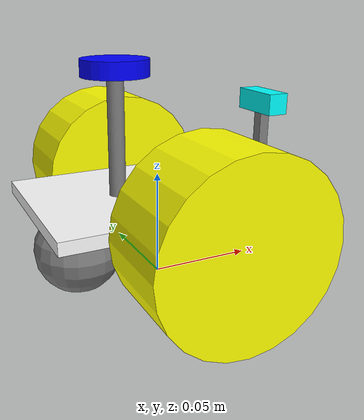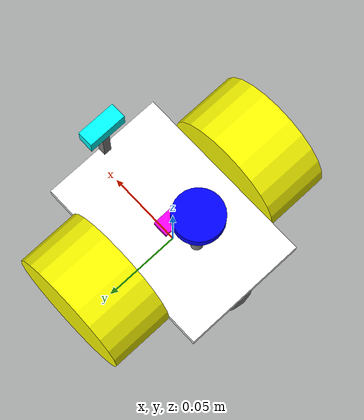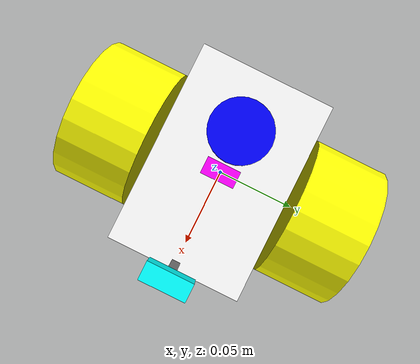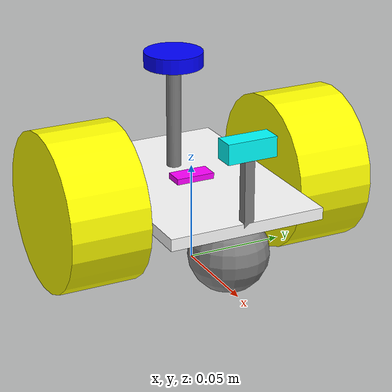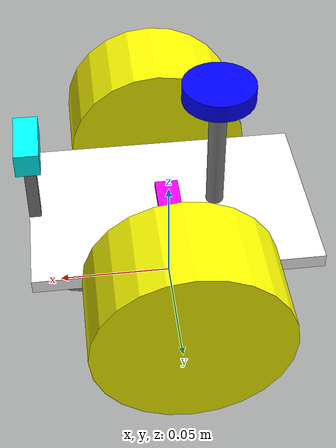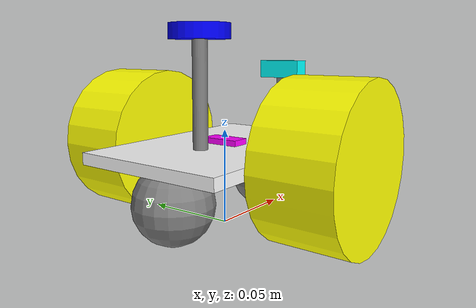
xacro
<?xml version="1.0"?>
<robot xmlns:xacro="http://ros.org/wiki/xacro" name="amr_sim">

    <xacro:property name="base_link" value="base_link" />
    <xacro:property name="lidar_link" value="lidar_link" />
    <xacro:property name="camera_link" value="camera_link" />
    <xacro:property name="imu_link" value="imu_link" />

    <xacro:property name="left_wheel" value="left_wheel" />
    <xacro:property name="right_wheel" value="right_wheel" />
    <xacro:property name="front_castor" value="front_castor" />
    <xacro:property name="back_castor" value="back_castor" />

    <xacro:include filename="$(find description)/urdf/base.xacro" />
    <xacro:include filename="$(find description)/urdf/wheel.xacro" />
    <xacro:include filename="$(find description)/urdf/castor.xacro" />
    <xacro:include filename="$(find description)/urdf/lidar.xacro" />
    <xacro:include filename="$(find description)/urdf/camera.xacro" />
    <xacro:include filename="$(find description)/urdf/imu.xacro" />

    <xacro:base name="${base_link}" joint_xyz="0 0 ${wheel_radius}" />
    <xacro:lidar name="${lidar_link}" joint_xyz="-${base_width/4} 0 ${lidar_height/2}" parent_name="${base_link}" />
    <xacro:camera name="${camera_link}" joint_xyz="${base_length/2-camera_support_width/2} 0 ${camera_support_height/2}" parent_name="${base_link}" />
    <xacro:imu name="${imu_link}" joint_xyz="0 0 ${imu_height/2+base_height/2}" parent_name="${base_link}" />

    <xacro:wheel name="${left_wheel}" joint_xyz="0 ${base_width/2+wheel_width/2} 0" fdir1_value="1 1 1" parent_name="${base_link}" />
    <xacro:wheel name="${right_wheel}" joint_xyz="0 -${base_width/2+wheel_width/2} 0" fdir1_value="1 1 1" parent_name="${base_link}" />
    <xacro:castor name="${front_castor}" joint_xyz="${base_length/2-castor_radius} 0 -${castor_radius}" parent_name="${base_link}" />
    <xacro:castor name="${back_castor}" joint_xyz="-${base_length/2-castor_radius} 0 -${castor_radius}" parent_name="${base_link}" />

    <xacro:include filename="$(find description)/urdf/gazebo_sensors_plugins.xacro" />
    <xacro:gazebo_sensors_plugins camera_link="${camera_link}" lidar_link="${lidar_link}" imu_link="${imu_link}" />

    <ros2_control name="ros2_controllers" type="system">
        <hardware>
            <plugin>gz_ros2_control/GazeboSimSystem</plugin>
        </hardware>

        <joint name="left_wheel_joint">
            <command_interface name="velocity" />
            <state_interface name="velocity" />
            <state_interface name="position" />
        </joint>
        <joint name="right_wheel_joint">
            <command_interface name="velocity" />
            <state_interface name="velocity" />
            <state_interface name="position" />
        </joint>
    </ros2_control>

    <gazebo>
        <plugin filename="libgz_ros2_control-system.so" name="gz_ros2_control::GazeboSimROS2ControlPlugin">
            <parameters>$(find description)/config/ros2_controllers_sim.yaml</parameters>
        </plugin>
    </gazebo>

</robot>

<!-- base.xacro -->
<robot xmlns:xacro="http://ros.org/wiki/xacro" name="base">

    <xacro:include filename="$(find description)/urdf/common_inertia.xacro" />

    <xacro:property name="base_length" value="0.120" />
    <xacro:property name="base_width" value="0.080" />
    <xacro:property name="base_height" value="0.006" />
    <xacro:property name="base_mass" value="1.0" />

    <xacro:property name="link_xyz" value="0 0 0" />
    <xacro:property name="link_rpy" value="0 0 0" />

    <link name="base_footprint" />

    <xacro:macro name="base" params="name joint_xyz">
        <link name="${name}">
            <visual>
                <origin xyz="${link_xyz}" rpy="${link_rpy}" />
                <geometry>
                    <box size="${base_length} ${base_height} ${base_width}" />
                </geometry>
                <material name="grey">
                    <color rgba="1 1 1 1" />
                </material>
            </visual>

            <collision>
                <origin xyz="${link_xyz}" rpy="${link_rpy}" />
                <geometry>
                    <box size="${base_length} ${base_height} ${base_width}" />
                </geometry>
            </collision>
            <xacro:box_inertia m="${base_mass}" w="${base_length}" h="${base_height}" d="${base_width}" xyz="${link_xyz}" rpy="${link_rpy}" />
        </link>

        <joint name="${name}_joint" type="fixed">
            <origin xyz="${joint_xyz}" rpy="0 0 0" />
            <parent link="base_footprint" />
            <child link="${name}" />
        </joint>
    </xacro:macro>
</robot>

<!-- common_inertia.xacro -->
<robot xmlns:xacro="http://ros.org/wiki/xacro">
    <xacro:macro name="box_inertia" params="m w h d xyz rpy">
        <inertial>
            <mass value="${m}" />
            <origin xyz="${xyz}" rpy="${rpy}" />
            <inertia
                ixx="${(1.0/12.0)*m*(h*h + d*d)}"
                iyy="${(1.0/12.0)*m*(w*w + d*d)}"
                izz="${(1.0/12.0)*m*(w*w + h*h)}"
                ixy="0.0" ixz="0.0" iyz="0.0" />
        </inertial>
    </xacro:macro>

    <xacro:macro name="cylinder_inertia" params="m r h xyz rpy">
        <inertial>
            <mass value="${m}" />
            <origin xyz="${xyz}" rpy="${rpy}" />
            <inertia
                ixx="${(1.0/12.0) * m * (3 * r * r + h * h)}"
                iyy="${(1.0/12.0) * m * (3 * r * r + h * h)}"
                izz="${0.5 * m * r * r}"
                ixy="0.0" ixz="0.0" iyz="0.0" />
        </inertial>
    </xacro:macro>

    <xacro:macro name="sphere_inertia" params="m r xyz rpy">
        <inertial>
            <mass value="${m}" />
            <origin xyz="${xyz}" rpy="${rpy}" />
            <inertia
                ixx="${(2.0/5.0) * m * r * r}"
                iyy="${(2.0/5.0) * m * r * r}"
                izz="${(2.0/5.0) * m * r * r}"
                ixy="0.0" ixz="0.0" iyz="0.0" />
        </inertial>
    </xacro:macro>
</robot>

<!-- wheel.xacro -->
<robot xmlns:xacro="http://ros.org/wiki/xacro">

    <xacro:include filename="$(find description)/urdf/common_inertia.xacro" />

    <xacro:property name="wheel_radius" value="0.040" />
    <xacro:property name="wheel_width" value="0.040" />
    <xacro:property name="wheel_mass" value="0.5" />

    <xacro:property name="link_xyz" value="0 0 0" />
    <xacro:property name="link_rpy" value="${pi/2} 0 0" />

    <xacro:macro name="wheel" params="name joint_xyz fdir1_value parent_name">
        <link name='${name}'>
            <visual>
                <origin xyz="${link_xyz}" rpy="${link_rpy}" />
                <geometry>
                    <cylinder radius="${wheel_radius}" length="${wheel_width}" />
                </geometry>
                <material name="yellow">
                    <color rgba="1.0 1.0 0.0 1" />
                </material>
            </visual>

            <collision>
                <origin xyz="${link_xyz}" rpy="${link_rpy}" />
                <geometry>
                    <cylinder radius="${wheel_radius}" length="${wheel_width}" />
                </geometry>
            </collision>

            <xacro:cylinder_inertia m="${wheel_mass}" r="${wheel_radius}" h="${wheel_width}" xyz="${link_xyz}" rpy="${link_rpy}" />
        </link>

        <gazebo reference="${name}">
            <mu1>20.0</mu1>
            <mu2>20.0</mu2>
            <kp>10000000</kp>
            <kd>1.0</kd>
        </gazebo>

        <joint name="${name}_joint" type="continuous">
            <parent link="${parent_name}" />
            <child link="${name}" />
            <origin xyz="${joint_xyz}" rpy="0 0 0" />
            <axis xyz="0 1 0" />
        </joint>
    </xacro:macro>
</robot>

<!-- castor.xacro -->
<robot xmlns:xacro="http://ros.org/wiki/xacro">

    <xacro:include filename="$(find description)/urdf/common_inertia.xacro" />

    <xacro:property name="castor_radius" value="0.020" />
    <xacro:property name="wheel_mass" value="0.01" />

    <xacro:macro name="castor" params="name joint_xyz parent_name">
        <link name='${name}'>
            <visual>
                <origin xyz="0 0 0" rpy="0 0 0" />
                <geometry>
                    <sphere radius="${castor_radius}" />
                </geometry>
                <material name="gray">
                    <color rgba="0.5 0.5 0.5 1" />
                </material>
            </visual>

            <collision>
                <origin xyz="0 0 0" rpy="0 0 0" />
                <geometry>
                    <sphere radius="${castor_radius}" />
                </geometry>
            </collision>

            <xacro:sphere_inertia m="${wheel_mass}" r="${castor_radius}" xyz="0 0 0" rpy="0 0 0" />
        </link>

        <gazebo reference="${name}">
            <mu1 value="0" />
            <mu2 value="0" />
        </gazebo>

        <joint name="${name}_joint" type="fixed">
            <parent link="${parent_name}" />
            <child link="${name}" />
            <origin xyz="${joint_xyz}" rpy="0 0 0" />
        </joint>

    </xacro:macro>

</robot>

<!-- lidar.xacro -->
<robot xmlns:xacro="http://ros.org/wiki/xacro">
    <xacro:include filename="$(find description)/urdf/common_inertia.xacro" />

    <xacro:property name="lidar_radius" value="0.015" />
    <xacro:property name="lidar_height" value="0.060" />
    <xacro:property name="lidar_mass" value="0.1" />
    <xacro:property name="lidar_length" value="${lidar_radius/2}" />

    <xacro:property name="lidar_support_radius" value="${lidar_radius/4}" />
    <xacro:property name="lidar_support_length" value="${lidar_height}" />
    <xacro:property name="lidar_support_mass" value="0.01" />

    <xacro:macro name="lidar" params="name joint_xyz parent_name">
        <link name="${name}">
            <visual>
                <origin xyz="0 0 0" rpy="0 0 0" />
                <geometry>
                    <cylinder radius="${lidar_radius}" length="${lidar_length}" />
                </geometry>
                <material name="black">
                    <color rgba="0.0 0.0 1.0 1" />
                </material>
            </visual>

            <collision>
                <origin xyz="0 0 0" rpy="0 0 0" />
                <geometry>
                    <cylinder radius="${lidar_radius}" length="${lidar_length}" />
                </geometry>
            </collision>

            <xacro:cylinder_inertia m="${lidar_mass}" r="${lidar_radius}" h="${lidar_length}" xyz="0 0 0" rpy="0 0 0" />
        </link>

        <xacro:property name="support_name" value="support_${name}" />

        <link name="${support_name}">
            <visual>
                <origin xyz="0 0 0" rpy="0 0 0" />
                <geometry>
                    <cylinder radius="${lidar_support_radius}" length="${lidar_support_length}" />
                </geometry>
                <material name="grey">
                    <color rgba="0.5 0.5 0.5 1" />
                </material>
            </visual>

            <collision>
                <origin xyz="0 0 0" rpy="0 0 0" />
                <geometry>
                    <cylinder radius="${lidar_support_radius}" length="${lidar_support_length}" />
                </geometry>
            </collision>

            <xacro:cylinder_inertia m="${lidar_support_mass}" r="${lidar_support_radius}" h="${lidar_support_length}" xyz="0 0 0" rpy="0 0 0" />
        </link>

        <joint name="${support_name}_joint" type="fixed">
            <parent link="${parent_name}" />
            <child link="${support_name}" />
            <origin xyz="${joint_xyz}" rpy="0 0 0" />
        </joint>

        <joint name="${name}_joint" type="fixed">
            <parent link="${support_name}" />
            <child link="${name}" />
            <origin xyz="0 0 ${lidar_height/2}" rpy="0 0 0" />
        </joint>

    </xacro:macro>
</robot>

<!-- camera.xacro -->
<robot xmlns:xacro="http://ros.org/wiki/xacro">
    <xacro:include filename="$(find description)/urdf/common_inertia.xacro" />

    <xacro:property name="camera_length" value="0.025" />
    <xacro:property name="camera_width" value="0.01" />
    <xacro:property name="camera_height" value="0.01" />
    <xacro:property name="camera_mass" value="0.1" />

    <xacro:property name="camera_support_length" value="0.005" />
    <xacro:property name="camera_support_width" value="0.005" />
    <xacro:property name="camera_support_height" value="0.04" />
    <xacro:property name="camera_support_mass" value="0.01" />

    <xacro:macro name="camera" params="name joint_xyz parent_name">
        <link name="${name}">
            <visual>
                <origin xyz="0 0 0" rpy="0 0 0" />
                <geometry>
                    <box size="${camera_width} ${camera_length} ${camera_height}" />
                </geometry>
                <material name="orange">
                    <color rgba="0.0 1.0 1.0 1" />
                </material>
            </visual>

            <collision>
                <origin xyz="0 0 0" rpy="0 0 0" />
                <geometry>
                    <box size="${camera_width} ${camera_length} ${camera_height}" />
                </geometry>
            </collision>

            <xacro:box_inertia m="${camera_mass}" w="${camera_width}" h="${camera_length}" d="${camera_height}" xyz="0 0 0" rpy="0 0 0" />
        </link>

        <xacro:property name="support_name" value="support_${name}" />

        <link name="${support_name}">
            <visual>
                <origin xyz="0 0 0" rpy="0 0 0" />
                <geometry>
                    <box size="${camera_support_width} ${camera_support_length} ${camera_support_height}" />
                </geometry>
                <material name="grey">
                    <color rgba="0.5 0.5 0.5 1" />
                </material>
            </visual>

            <collision>
                <origin xyz="0 0 0" rpy="0 0 0" />
                <geometry>
                    <box size="${camera_support_width} ${camera_support_length} ${camera_support_height}" />
                </geometry>
            </collision>

            <xacro:box_inertia m="${camera_support_mass}" w="${camera_support_width}" h="${camera_support_length}" d="${camera_support_height}" xyz="0 0 0" rpy="0 0 0" />
        </link>

        <joint name="${support_name}_joint" type="fixed">
            <parent link="${parent_name}" />
            <child link="${support_name}" />
            <origin xyz="${joint_xyz}" rpy="0 0 0" />
        </joint>

        <joint name="${name}_joint" type="fixed">
            <parent link="${support_name}" />
            <child link="${name}" />
            <origin xyz="0 0 ${camera_support_height/2}" rpy="0 0 0" />
        </joint>
    </xacro:macro>

</robot>

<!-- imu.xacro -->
<robot xmlns:xacro="http://ros.org/wiki/xacro">
    <xacro:include filename="$(find description)/urdf/common_inertia.xacro" />

    <xacro:property name="imu_length" value="0.01" />
    <xacro:property name="imu_width" value="0.02" />
    <xacro:property name="imu_height" value="0.003" />
    <xacro:property name="imu_mass" value="0.005" />

    <xacro:macro name="imu" params="name joint_xyz parent_name">
        <link name="${name}">
            <visual>
                <origin xyz="0 0 0" rpy="0 0 0" />
                <geometry>
                    <box size="${imu_length} ${imu_width} ${imu_height}" />
                </geometry>
                <material name="purple">
                    <color rgba="1.0 0.0 1.0 1" />
                </material>
            </visual>

            <collision>
                <origin xyz="0 0 0" rpy="0 0 0" />
                <geometry>
                    <box size="${imu_length} ${imu_width} ${imu_height}" />
                </geometry>
            </collision>

            <xacro:box_inertia m="${imu_mass}" w="${imu_length}" h="${imu_width}" d="${imu_height}" xyz="0 0 0" rpy="0 0 0" />
        </link>

        <joint name="${name}_joint" type="fixed">
            <parent link="${parent_name}" />
            <child link="${name}" />
            <origin xyz="${joint_xyz}" rpy="0 0 0" />
        </joint>

    </xacro:macro>
</robot>
